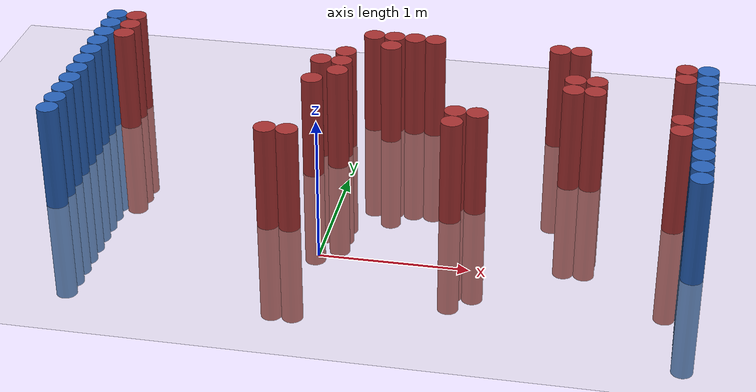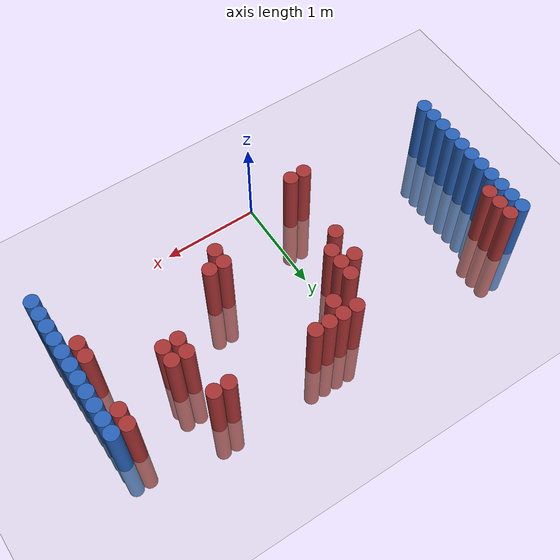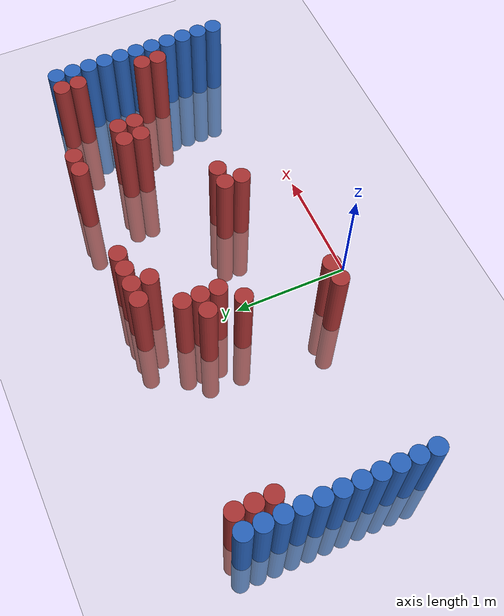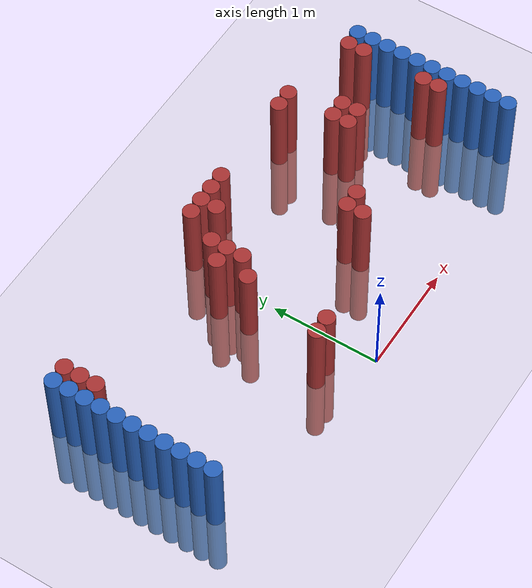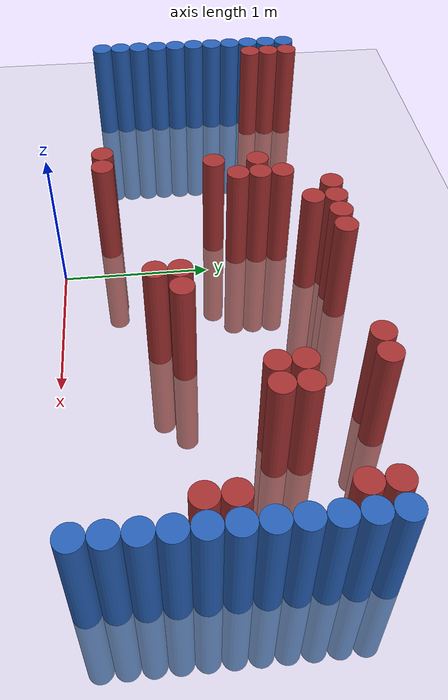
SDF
<sdf version="1.6">
 <world name="default">
  <model name="ground_plane">
   <static>1</static>
   <link name="link">
    <collision name="collision">
     <geometry><plane><normal>0 0 1</normal><size>100 100</size></plane></geometry>
     <surface><friction><ode><mu>100</mu><mu2>50</mu2></ode></friction></surface>
    </collision>
    <visual name="visual">
     <cast_shadows>0</cast_shadows>
     <geometry><plane><normal>0 0 1</normal><size>100 100</size></plane></geometry>
     <material>
      <script><uri>file://media/materials/scripts/gazebo.material</uri><name>Gazebo/Grey</name></script>
     </material>
    </visual>
   </link>
  </model>
  <model name="unit_cylinder_97">
   <static>1</static>
   <pose>-1.925000 0.325000 0.000000 0.000000 0.000000 0.000000</pose>
   <link name="link">
    <inertial>
     <mass>1</mass>
     <inertia><ixx>0.145833</ixx><ixy>0</ixy><ixz>0</ixz><iyy>0.145833</iyy><iyz>0</iyz><izz>0.125</izz></inertia>
    </inertial>
    <collision name="collision">
     <geometry><cylinder><radius>0.075000</radius><length>1.5</length></cylinder></geometry>
    </collision>
    <visual name="visual">
     <geometry><cylinder><radius>0.075000</radius><length>1.5</length></cylinder></geometry>
     <material>
      <ambient>0.152000 0.379000 0.720000 1</ambient>
      <diffuse>0.152000 0.379000 0.720000 1</diffuse>
     </material>
     <material>
      <script><name>Gazebo/Grey</name><uri>file://media/materials/scripts/gazebo.material</uri></script>
     </material>
    </visual>
   </link>
  </model>
  <model name="unit_cylinder_98">
   <static>1</static>
   <pose>-1.925000 0.475000 0.000000 0.000000 0.000000 0.000000</pose>
   <link name="link">
    <inertial>
     <mass>1</mass>
     <inertia><ixx>0.145833</ixx><ixy>0</ixy><ixz>0</ixz><iyy>0.145833</iyy><iyz>0</iyz><izz>0.125</izz></inertia>
    </inertial>
    <collision name="collision">
     <geometry><cylinder><radius>0.075000</radius><length>1.5</length></cylinder></geometry>
    </collision>
    <visual name="visual">
     <geometry><cylinder><radius>0.075000</radius><length>1.5</length></cylinder></geometry>
     <material>
      <ambient>0.152000 0.379000 0.720000 1</ambient>
      <diffuse>0.152000 0.379000 0.720000 1</diffuse>
     </material>
     <material>
      <script><name>Gazebo/Grey</name><uri>file://media/materials/scripts/gazebo.material</uri></script>
     </material>
    </visual>
   </link>
  </model>
  <model name="unit_cylinder_99">
   <static>1</static>
   <pose>-1.925000 0.625000 0.000000 0.000000 0.000000 0.000000</pose>
   <link name="link">
    <inertial>
     <mass>1</mass>
     <inertia><ixx>0.145833</ixx><ixy>0</ixy><ixz>0</ixz><iyy>0.145833</iyy><iyz>0</iyz><izz>0.125</izz></inertia>
    </inertial>
    <collision name="collision">
     <geometry><cylinder><radius>0.075000</radius><length>1.5</length></cylinder></geometry>
    </collision>
    <visual name="visual">
     <geometry><cylinder><radius>0.075000</radius><length>1.5</length></cylinder></geometry>
     <material>
      <ambient>0.152000 0.379000 0.720000 1</ambient>
      <diffuse>0.152000 0.379000 0.720000 1</diffuse>
     </material>
     <material>
      <script><name>Gazebo/Grey</name><uri>file://media/materials/scripts/gazebo.material</uri></script>
     </material>
    </visual>
   </link>
  </model>
  <model name="unit_cylinder_100">
   <static>1</static>
   <pose>-1.925000 0.775000 0.000000 0.000000 0.000000 0.000000</pose>
   <link name="link">
    <inertial>
     <mass>1</mass>
     <inertia><ixx>0.145833</ixx><ixy>0</ixy><ixz>0</ixz><iyy>0.145833</iyy><iyz>0</iyz><izz>0.125</izz></inertia>
    </inertial>
    <collision name="collision">
     <geometry><cylinder><radius>0.075000</radius><length>1.5</length></cylinder></geometry>
    </collision>
    <visual name="visual">
     <geometry><cylinder><radius>0.075000</radius><length>1.5</length></cylinder></geometry>
     <material>
      <ambient>0.152000 0.379000 0.720000 1</ambient>
      <diffuse>0.152000 0.379000 0.720000 1</diffuse>
     </material>
     <material>
      <script><name>Gazebo/Grey</name><uri>file://media/materials/scripts/gazebo.material</uri></script>
     </material>
    </visual>
   </link>
  </model>
  <model name="unit_cylinder_101">
   <static>1</static>
   <pose>-1.925000 0.925000 0.000000 0.000000 0.000000 0.000000</pose>
   <link name="link">
    <inertial>
     <mass>1</mass>
     <inertia><ixx>0.145833</ixx><ixy>0</ixy><ixz>0</ixz><iyy>0.145833</iyy><iyz>0</iyz><izz>0.125</izz></inertia>
    </inertial>
    <collision name="collision">
     <geometry><cylinder><radius>0.075000</radius><length>1.5</length></cylinder></geometry>
    </collision>
    <visual name="visual">
     <geometry><cylinder><radius>0.075000</radius><length>1.5</length></cylinder></geometry>
     <material>
      <ambient>0.152000 0.379000 0.720000 1</ambient>
      <diffuse>0.152000 0.379000 0.720000 1</diffuse>
     </material>
     <material>
      <script><name>Gazebo/Grey</name><uri>file://media/materials/scripts/gazebo.material</uri></script>
     </material>
    </visual>
   </link>
  </model>
  <model name="unit_cylinder_102">
   <static>1</static>
   <pose>-1.925000 1.075000 0.000000 0.000000 0.000000 0.000000</pose>
   <link name="link">
    <inertial>
     <mass>1</mass>
     <inertia><ixx>0.145833</ixx><ixy>0</ixy><ixz>0</ixz><iyy>0.145833</iyy><iyz>0</iyz><izz>0.125</izz></inertia>
    </inertial>
    <collision name="collision">
     <geometry><cylinder><radius>0.075000</radius><length>1.5</length></cylinder></geometry>
    </collision>
    <visual name="visual">
     <geometry><cylinder><radius>0.075000</radius><length>1.5</length></cylinder></geometry>
     <material>
      <ambient>0.152000 0.379000 0.720000 1</ambient>
      <diffuse>0.152000 0.379000 0.720000 1</diffuse>
     </material>
     <material>
      <script><name>Gazebo/Grey</name><uri>file://media/materials/scripts/gazebo.material</uri></script>
     </material>
    </visual>
   </link>
  </model>
  <model name="unit_cylinder_103">
   <static>1</static>
   <pose>-1.925000 1.225000 0.000000 0.000000 0.000000 0.000000</pose>
   <link name="link">
    <inertial>
     <mass>1</mass>
     <inertia><ixx>0.145833</ixx><ixy>0</ixy><ixz>0</ixz><iyy>0.145833</iyy><iyz>0</iyz><izz>0.125</izz></inertia>
    </inertial>
    <collision name="collision">
     <geometry><cylinder><radius>0.075000</radius><length>1.5</length></cylinder></geometry>
    </collision>
    <visual name="visual">
     <geometry><cylinder><radius>0.075000</radius><length>1.5</length></cylinder></geometry>
     <material>
      <ambient>0.152000 0.379000 0.720000 1</ambient>
      <diffuse>0.152000 0.379000 0.720000 1</diffuse>
     </material>
     <material>
      <script><name>Gazebo/Grey</name><uri>file://media/materials/scripts/gazebo.material</uri></script>
     </material>
    </visual>
   </link>
  </model>
  <model name="unit_cylinder_104">
   <static>1</static>
   <pose>-1.925000 1.375000 0.000000 0.000000 0.000000 0.000000</pose>
   <link name="link">
    <inertial>
     <mass>1</mass>
     <inertia><ixx>0.145833</ixx><ixy>0</ixy><ixz>0</ixz><iyy>0.145833</iyy><iyz>0</iyz><izz>0.125</izz></inertia>
    </inertial>
    <collision name="collision">
     <geometry><cylinder><radius>0.075000</radius><length>1.5</length></cylinder></geometry>
    </collision>
    <visual name="visual">
     <geometry><cylinder><radius>0.075000</radius><length>1.5</length></cylinder></geometry>
     <material>
      <ambient>0.152000 0.379000 0.720000 1</ambient>
      <diffuse>0.152000 0.379000 0.720000 1</diffuse>
     </material>
     <material>
      <script><name>Gazebo/Grey</name><uri>file://media/materials/scripts/gazebo.material</uri></script>
     </material>
    </visual>
   </link>
  </model>
  <model name="unit_cylinder_105">
   <static>1</static>
   <pose>-1.925000 1.525000 0.000000 0.000000 0.000000 0.000000</pose>
   <link name="link">
    <inertial>
     <mass>1</mass>
     <inertia><ixx>0.145833</ixx><ixy>0</ixy><ixz>0</ixz><iyy>0.145833</iyy><iyz>0</iyz><izz>0.125</izz></inertia>
    </inertial>
    <collision name="collision">
     <geometry><cylinder><radius>0.075000</radius><length>1.5</length></cylinder></geometry>
    </collision>
    <visual name="visual">
     <geometry><cylinder><radius>0.075000</radius><length>1.5</length></cylinder></geometry>
     <material>
      <ambient>0.152000 0.379000 0.720000 1</ambient>
      <diffuse>0.152000 0.379000 0.720000 1</diffuse>
     </material>
     <material>
      <script><name>Gazebo/Grey</name><uri>file://media/materials/scripts/gazebo.material</uri></script>
     </material>
    </visual>
   </link>
  </model>
  <model name="unit_cylinder_106">
   <static>1</static>
   <pose>-1.925000 1.675000 0.000000 0.000000 0.000000 0.000000</pose>
   <link name="link">
    <inertial>
     <mass>1</mass>
     <inertia><ixx>0.145833</ixx><ixy>0</ixy><ixz>0</ixz><iyy>0.145833</iyy><iyz>0</iyz><izz>0.125</izz></inertia>
    </inertial>
    <collision name="collision">
     <geometry><cylinder><radius>0.075000</radius><length>1.5</length></cylinder></geometry>
    </collision>
    <visual name="visual">
     <geometry><cylinder><radius>0.075000</radius><length>1.5</length></cylinder></geometry>
     <material>
      <ambient>0.152000 0.379000 0.720000 1</ambient>
      <diffuse>0.152000 0.379000 0.720000 1</diffuse>
     </material>
     <material>
      <script><name>Gazebo/Grey</name><uri>file://media/materials/scripts/gazebo.material</uri></script>
     </material>
    </visual>
   </link>
  </model>
  <model name="unit_cylinder_107">
   <static>1</static>
   <pose>-1.925000 1.825000 0.000000 0.000000 0.000000 0.000000</pose>
   <link name="link">
    <inertial>
     <mass>1</mass>
     <inertia><ixx>0.145833</ixx><ixy>0</ixy><ixz>0</ixz><iyy>0.145833</iyy><iyz>0</iyz><izz>0.125</izz></inertia>
    </inertial>
    <collision name="collision">
     <geometry><cylinder><radius>0.075000</radius><length>1.5</length></cylinder></geometry>
    </collision>
    <visual name="visual">
     <geometry><cylinder><radius>0.075000</radius><length>1.5</length></cylinder></geometry>
     <material>
      <ambient>0.152000 0.379000 0.720000 1</ambient>
      <diffuse>0.152000 0.379000 0.720000 1</diffuse>
     </material>
     <material>
      <script><name>Gazebo/Grey</name><uri>file://media/materials/scripts/gazebo.material</uri></script>
     </material>
    </visual>
   </link>
  </model>
  <model name="unit_cylinder_126">
   <static>1</static>
   <pose>-1.775000 1.525000 0.000000 0.000000 0.000000 0.000000</pose>
   <link name="link">
    <inertial>
     <mass>1</mass>
     <inertia><ixx>0.145833</ixx><ixy>0</ixy><ixz>0</ixz><iyy>0.145833</iyy><iyz>0</iyz><izz>0.125</izz></inertia>
    </inertial>
    <collision name="collision">
     <geometry><cylinder><radius>0.075000</radius><length>1.5</length></cylinder></geometry>
    </collision>
    <visual name="visual">
     <geometry><cylinder><radius>0.075000</radius><length>1.5</length></cylinder></geometry>
     <material>
      <ambient>0.648000 0.192000 0.192000 1</ambient>
      <diffuse>0.648000 0.192000 0.192000 1</diffuse>
     </material>
     <material>
      <script><name>Gazebo/Grey</name><uri>file://media/materials/scripts/gazebo.material</uri></script>
     </material>
    </visual>
   </link>
  </model>
  <model name="unit_cylinder_127">
   <static>1</static>
   <pose>-1.775000 1.675000 0.000000 0.000000 0.000000 0.000000</pose>
   <link name="link">
    <inertial>
     <mass>1</mass>
     <inertia><ixx>0.145833</ixx><ixy>0</ixy><ixz>0</ixz><iyy>0.145833</iyy><iyz>0</iyz><izz>0.125</izz></inertia>
    </inertial>
    <collision name="collision">
     <geometry><cylinder><radius>0.075000</radius><length>1.5</length></cylinder></geometry>
    </collision>
    <visual name="visual">
     <geometry><cylinder><radius>0.075000</radius><length>1.5</length></cylinder></geometry>
     <material>
      <ambient>0.648000 0.192000 0.192000 1</ambient>
      <diffuse>0.648000 0.192000 0.192000 1</diffuse>
     </material>
     <material>
      <script><name>Gazebo/Grey</name><uri>file://media/materials/scripts/gazebo.material</uri></script>
     </material>
    </visual>
   </link>
  </model>
  <model name="unit_cylinder_128">
   <static>1</static>
   <pose>-1.775000 1.825000 0.000000 0.000000 0.000000 0.000000</pose>
   <link name="link">
    <inertial>
     <mass>1</mass>
     <inertia><ixx>0.145833</ixx><ixy>0</ixy><ixz>0</ixz><iyy>0.145833</iyy><iyz>0</iyz><izz>0.125</izz></inertia>
    </inertial>
    <collision name="collision">
     <geometry><cylinder><radius>0.075000</radius><length>1.5</length></cylinder></geometry>
    </collision>
    <visual name="visual">
     <geometry><cylinder><radius>0.075000</radius><length>1.5</length></cylinder></geometry>
     <material>
      <ambient>0.648000 0.192000 0.192000 1</ambient>
      <diffuse>0.648000 0.192000 0.192000 1</diffuse>
     </material>
     <material>
      <script><name>Gazebo/Grey</name><uri>file://media/materials/scripts/gazebo.material</uri></script>
     </material>
    </visual>
   </link>
  </model>
  <model name="unit_cylinder_167">
   <static>1</static>
   <pose>-0.425000 0.325000 0.000000 0.000000 0.000000 0.000000</pose>
   <link name="link">
    <inertial>
     <mass>1</mass>
     <inertia><ixx>0.145833</ixx><ixy>0</ixy><ixz>0</ixz><iyy>0.145833</iyy><iyz>0</iyz><izz>0.125</izz></inertia>
    </inertial>
    <collision name="collision">
     <geometry><cylinder><radius>0.075000</radius><length>1.5</length></cylinder></geometry>
    </collision>
    <visual name="visual">
     <geometry><cylinder><radius>0.075000</radius><length>1.5</length></cylinder></geometry>
     <material>
      <ambient>0.648000 0.192000 0.192000 1</ambient>
      <diffuse>0.648000 0.192000 0.192000 1</diffuse>
     </material>
     <material>
      <script><name>Gazebo/Grey</name><uri>file://media/materials/scripts/gazebo.material</uri></script>
     </material>
    </visual>
   </link>
  </model>
  <model name="unit_cylinder_169">
   <static>1</static>
   <pose>-0.275000 0.325000 0.000000 0.000000 0.000000 0.000000</pose>
   <link name="link">
    <inertial>
     <mass>1</mass>
     <inertia><ixx>0.145833</ixx><ixy>0</ixy><ixz>0</ixz><iyy>0.145833</iyy><iyz>0</iyz><izz>0.125</izz></inertia>
    </inertial>
    <collision name="collision">
     <geometry><cylinder><radius>0.075000</radius><length>1.5</length></cylinder></geometry>
    </collision>
    <visual name="visual">
     <geometry><cylinder><radius>0.075000</radius><length>1.5</length></cylinder></geometry>
     <material>
      <ambient>0.648000 0.192000 0.192000 1</ambient>
      <diffuse>0.648000 0.192000 0.192000 1</diffuse>
     </material>
     <material>
      <script><name>Gazebo/Grey</name><uri>file://media/materials/scripts/gazebo.material</uri></script>
     </material>
    </visual>
   </link>
  </model>
  <model name="unit_cylinder_170">
   <static>1</static>
   <pose>-0.275000 1.075000 0.000000 0.000000 0.000000 0.000000</pose>
   <link name="link">
    <inertial>
     <mass>1</mass>
     <inertia><ixx>0.145833</ixx><ixy>0</ixy><ixz>0</ixz><iyy>0.145833</iyy><iyz>0</iyz><izz>0.125</izz></inertia>
    </inertial>
    <collision name="collision">
     <geometry><cylinder><radius>0.075000</radius><length>1.5</length></cylinder></geometry>
    </collision>
    <visual name="visual">
     <geometry><cylinder><radius>0.075000</radius><length>1.5</length></cylinder></geometry>
     <material>
      <ambient>0.648000 0.192000 0.192000 1</ambient>
      <diffuse>0.648000 0.192000 0.192000 1</diffuse>
     </material>
     <material>
      <script><name>Gazebo/Grey</name><uri>file://media/materials/scripts/gazebo.material</uri></script>
     </material>
    </visual>
   </link>
  </model>
  <model name="unit_cylinder_171">
   <static>1</static>
   <pose>-0.275000 1.375000 0.000000 0.000000 0.000000 0.000000</pose>
   <link name="link">
    <inertial>
     <mass>1</mass>
     <inertia><ixx>0.145833</ixx><ixy>0</ixy><ixz>0</ixz><iyy>0.145833</iyy><iyz>0</iyz><izz>0.125</izz></inertia>
    </inertial>
    <collision name="collision">
     <geometry><cylinder><radius>0.075000</radius><length>1.5</length></cylinder></geometry>
    </collision>
    <visual name="visual">
     <geometry><cylinder><radius>0.075000</radius><length>1.5</length></cylinder></geometry>
     <material>
      <ambient>0.648000 0.192000 0.192000 1</ambient>
      <diffuse>0.648000 0.192000 0.192000 1</diffuse>
     </material>
     <material>
      <script><name>Gazebo/Grey</name><uri>file://media/materials/scripts/gazebo.material</uri></script>
     </material>
    </visual>
   </link>
  </model>
  <model name="unit_cylinder_172">
   <static>1</static>
   <pose>-0.125000 1.225000 0.000000 0.000000 0.000000 0.000000</pose>
   <link name="link">
    <inertial>
     <mass>1</mass>
     <inertia><ixx>0.145833</ixx><ixy>0</ixy><ixz>0</ixz><iyy>0.145833</iyy><iyz>0</iyz><izz>0.125</izz></inertia>
    </inertial>
    <collision name="collision">
     <geometry><cylinder><radius>0.075000</radius><length>1.5</length></cylinder></geometry>
    </collision>
    <visual name="visual">
     <geometry><cylinder><radius>0.075000</radius><length>1.5</length></cylinder></geometry>
     <material>
      <ambient>0.648000 0.192000 0.192000 1</ambient>
      <diffuse>0.648000 0.192000 0.192000 1</diffuse>
     </material>
     <material>
      <script><name>Gazebo/Grey</name><uri>file://media/materials/scripts/gazebo.material</uri></script>
     </material>
    </visual>
   </link>
  </model>
  <model name="unit_cylinder_173">
   <static>1</static>
   <pose>-0.125000 1.375000 0.000000 0.000000 0.000000 0.000000</pose>
   <link name="link">
    <inertial>
     <mass>1</mass>
     <inertia><ixx>0.145833</ixx><ixy>0</ixy><ixz>0</ixz><iyy>0.145833</iyy><iyz>0</iyz><izz>0.125</izz></inertia>
    </inertial>
    <collision name="collision">
     <geometry><cylinder><radius>0.075000</radius><length>1.5</length></cylinder></geometry>
    </collision>
    <visual name="visual">
     <geometry><cylinder><radius>0.075000</radius><length>1.5</length></cylinder></geometry>
     <material>
      <ambient>0.648000 0.192000 0.192000 1</ambient>
      <diffuse>0.648000 0.192000 0.192000 1</diffuse>
     </material>
     <material>
      <script><name>Gazebo/Grey</name><uri>file://media/materials/scripts/gazebo.material</uri></script>
     </material>
    </visual>
   </link>
  </model>
  <model name="unit_cylinder_174">
   <static>1</static>
   <pose>-0.125000 1.525000 0.000000 0.000000 0.000000 0.000000</pose>
   <link name="link">
    <inertial>
     <mass>1</mass>
     <inertia><ixx>0.145833</ixx><ixy>0</ixy><ixz>0</ixz><iyy>0.145833</iyy><iyz>0</iyz><izz>0.125</izz></inertia>
    </inertial>
    <collision name="collision">
     <geometry><cylinder><radius>0.075000</radius><length>1.5</length></cylinder></geometry>
    </collision>
    <visual name="visual">
     <geometry><cylinder><radius>0.075000</radius><length>1.5</length></cylinder></geometry>
     <material>
      <ambient>0.648000 0.192000 0.192000 1</ambient>
      <diffuse>0.648000 0.192000 0.192000 1</diffuse>
     </material>
     <material>
      <script><name>Gazebo/Grey</name><uri>file://media/materials/scripts/gazebo.material</uri></script>
     </material>
    </visual>
   </link>
  </model>
  <model name="unit_cylinder_175">
   <static>1</static>
   <pose>0.025000 1.825000 0.000000 0.000000 0.000000 0.000000</pose>
   <link name="link">
    <inertial>
     <mass>1</mass>
     <inertia><ixx>0.145833</ixx><ixy>0</ixy><ixz>0</ixz><iyy>0.145833</iyy><iyz>0</iyz><izz>0.125</izz></inertia>
    </inertial>
    <collision name="collision">
     <geometry><cylinder><radius>0.075000</radius><length>1.5</length></cylinder></geometry>
    </collision>
    <visual name="visual">
     <geometry><cylinder><radius>0.075000</radius><length>1.5</length></cylinder></geometry>
     <material>
      <ambient>0.648000 0.192000 0.192000 1</ambient>
      <diffuse>0.648000 0.192000 0.192000 1</diffuse>
     </material>
     <material>
      <script><name>Gazebo/Grey</name><uri>file://media/materials/scripts/gazebo.material</uri></script>
     </material>
    </visual>
   </link>
  </model>
  <model name="unit_cylinder_177">
   <static>1</static>
   <pose>0.175000 1.675000 0.000000 0.000000 0.000000 0.000000</pose>
   <link name="link">
    <inertial>
     <mass>1</mass>
     <inertia><ixx>0.145833</ixx><ixy>0</ixy><ixz>0</ixz><iyy>0.145833</iyy><iyz>0</iyz><izz>0.125</izz></inertia>
    </inertial>
    <collision name="collision">
     <geometry><cylinder><radius>0.075000</radius><length>1.5</length></cylinder></geometry>
    </collision>
    <visual name="visual">
     <geometry><cylinder><radius>0.075000</radius><length>1.5</length></cylinder></geometry>
     <material>
      <ambient>0.648000 0.192000 0.192000 1</ambient>
      <diffuse>0.648000 0.192000 0.192000 1</diffuse>
     </material>
     <material>
      <script><name>Gazebo/Grey</name><uri>file://media/materials/scripts/gazebo.material</uri></script>
     </material>
    </visual>
   </link>
  </model>
  <model name="unit_cylinder_178">
   <static>1</static>
   <pose>0.175000 1.825000 0.000000 0.000000 0.000000 0.000000</pose>
   <link name="link">
    <inertial>
     <mass>1</mass>
     <inertia><ixx>0.145833</ixx><ixy>0</ixy><ixz>0</ixz><iyy>0.145833</iyy><iyz>0</iyz><izz>0.125</izz></inertia>
    </inertial>
    <collision name="collision">
     <geometry><cylinder><radius>0.075000</radius><length>1.5</length></cylinder></geometry>
    </collision>
    <visual name="visual">
     <geometry><cylinder><radius>0.075000</radius><length>1.5</length></cylinder></geometry>
     <material>
      <ambient>0.648000 0.192000 0.192000 1</ambient>
      <diffuse>0.648000 0.192000 0.192000 1</diffuse>
     </material>
     <material>
      <script><name>Gazebo/Grey</name><uri>file://media/materials/scripts/gazebo.material</uri></script>
     </material>
    </visual>
   </link>
  </model>
  <model name="unit_cylinder_180">
   <static>1</static>
   <pose>0.325000 1.825000 0.000000 0.000000 0.000000 0.000000</pose>
   <link name="link">
    <inertial>
     <mass>1</mass>
     <inertia><ixx>0.145833</ixx><ixy>0</ixy><ixz>0</ixz><iyy>0.145833</iyy><iyz>0</iyz><izz>0.125</izz></inertia>
    </inertial>
    <collision name="collision">
     <geometry><cylinder><radius>0.075000</radius><length>1.5</length></cylinder></geometry>
    </collision>
    <visual name="visual">
     <geometry><cylinder><radius>0.075000</radius><length>1.5</length></cylinder></geometry>
     <material>
      <ambient>0.648000 0.192000 0.192000 1</ambient>
      <diffuse>0.648000 0.192000 0.192000 1</diffuse>
     </material>
     <material>
      <script><name>Gazebo/Grey</name><uri>file://media/materials/scripts/gazebo.material</uri></script>
     </material>
    </visual>
   </link>
  </model>
  <model name="unit_cylinder_182">
   <static>1</static>
   <pose>0.475000 1.825000 0.000000 0.000000 0.000000 0.000000</pose>
   <link name="link">
    <inertial>
     <mass>1</mass>
     <inertia><ixx>0.145833</ixx><ixy>0</ixy><ixz>0</ixz><iyy>0.145833</iyy><iyz>0</iyz><izz>0.125</izz></inertia>
    </inertial>
    <collision name="collision">
     <geometry><cylinder><radius>0.075000</radius><length>1.5</length></cylinder></geometry>
    </collision>
    <visual name="visual">
     <geometry><cylinder><radius>0.075000</radius><length>1.5</length></cylinder></geometry>
     <material>
      <ambient>0.648000 0.192000 0.192000 1</ambient>
      <diffuse>0.648000 0.192000 0.192000 1</diffuse>
     </material>
     <material>
      <script><name>Gazebo/Grey</name><uri>file://media/materials/scripts/gazebo.material</uri></script>
     </material>
    </visual>
   </link>
  </model>
  <model name="unit_cylinder_186">
   <static>1</static>
   <pose>0.775000 0.625000 0.000000 0.000000 0.000000 0.000000</pose>
   <link name="link">
    <inertial>
     <mass>1</mass>
     <inertia><ixx>0.145833</ixx><ixy>0</ixy><ixz>0</ixz><iyy>0.145833</iyy><iyz>0</iyz><izz>0.125</izz></inertia>
    </inertial>
    <collision name="collision">
     <geometry><cylinder><radius>0.075000</radius><length>1.5</length></cylinder></geometry>
    </collision>
    <visual name="visual">
     <geometry><cylinder><radius>0.075000</radius><length>1.5</length></cylinder></geometry>
     <material>
      <ambient>0.648000 0.192000 0.192000 1</ambient>
      <diffuse>0.648000 0.192000 0.192000 1</diffuse>
     </material>
     <material>
      <script><name>Gazebo/Grey</name><uri>file://media/materials/scripts/gazebo.material</uri></script>
     </material>
    </visual>
   </link>
  </model>
  <model name="unit_cylinder_187">
   <static>1</static>
   <pose>0.775000 0.775000 0.000000 0.000000 0.000000 0.000000</pose>
   <link name="link">
    <inertial>
     <mass>1</mass>
     <inertia><ixx>0.145833</ixx><ixy>0</ixy><ixz>0</ixz><iyy>0.145833</iyy><iyz>0</iyz><izz>0.125</izz></inertia>
    </inertial>
    <collision name="collision">
     <geometry><cylinder><radius>0.075000</radius><length>1.5</length></cylinder></geometry>
    </collision>
    <visual name="visual">
     <geometry><cylinder><radius>0.075000</radius><length>1.5</length></cylinder></geometry>
     <material>
      <ambient>0.648000 0.192000 0.192000 1</ambient>
      <diffuse>0.648000 0.192000 0.192000 1</diffuse>
     </material>
     <material>
      <script><name>Gazebo/Grey</name><uri>file://media/materials/scripts/gazebo.material</uri></script>
     </material>
    </visual>
   </link>
  </model>
  <model name="unit_cylinder_193">
   <static>1</static>
   <pose>0.925000 0.775000 0.000000 0.000000 0.000000 0.000000</pose>
   <link name="link">
    <inertial>
     <mass>1</mass>
     <inertia><ixx>0.145833</ixx><ixy>0</ixy><ixz>0</ixz><iyy>0.145833</iyy><iyz>0</iyz><izz>0.125</izz></inertia>
    </inertial>
    <collision name="collision">
     <geometry><cylinder><radius>0.075000</radius><length>1.5</length></cylinder></geometry>
    </collision>
    <visual name="visual">
     <geometry><cylinder><radius>0.075000</radius><length>1.5</length></cylinder></geometry>
     <material>
      <ambient>0.648000 0.192000 0.192000 1</ambient>
      <diffuse>0.648000 0.192000 0.192000 1</diffuse>
     </material>
     <material>
      <script><name>Gazebo/Grey</name><uri>file://media/materials/scripts/gazebo.material</uri></script>
     </material>
    </visual>
   </link>
  </model>
  <model name="unit_cylinder_207">
   <static>1</static>
   <pose>1.375000 1.825000 0.000000 0.000000 0.000000 0.000000</pose>
   <link name="link">
    <inertial>
     <mass>1</mass>
     <inertia><ixx>0.145833</ixx><ixy>0</ixy><ixz>0</ixz><iyy>0.145833</iyy><iyz>0</iyz><izz>0.125</izz></inertia>
    </inertial>
    <collision name="collision">
     <geometry><cylinder><radius>0.075000</radius><length>1.5</length></cylinder></geometry>
    </collision>
    <visual name="visual">
     <geometry><cylinder><radius>0.075000</radius><length>1.5</length></cylinder></geometry>
     <material>
      <ambient>0.648000 0.192000 0.192000 1</ambient>
      <diffuse>0.648000 0.192000 0.192000 1</diffuse>
     </material>
     <material>
      <script><name>Gazebo/Grey</name><uri>file://media/materials/scripts/gazebo.material</uri></script>
     </material>
    </visual>
   </link>
  </model>
  <model name="unit_cylinder_216">
   <static>1</static>
   <pose>1.525000 1.225000 0.000000 0.000000 0.000000 0.000000</pose>
   <link name="link">
    <inertial>
     <mass>1</mass>
     <inertia><ixx>0.145833</ixx><ixy>0</ixy><ixz>0</ixz><iyy>0.145833</iyy><iyz>0</iyz><izz>0.125</izz></inertia>
    </inertial>
    <collision name="collision">
     <geometry><cylinder><radius>0.075000</radius><length>1.5</length></cylinder></geometry>
    </collision>
    <visual name="visual">
     <geometry><cylinder><radius>0.075000</radius><length>1.5</length></cylinder></geometry>
     <material>
      <ambient>0.648000 0.192000 0.192000 1</ambient>
      <diffuse>0.648000 0.192000 0.192000 1</diffuse>
     </material>
     <material>
      <script><name>Gazebo/Grey</name><uri>file://media/materials/scripts/gazebo.material</uri></script>
     </material>
    </visual>
   </link>
  </model>
  <model name="unit_cylinder_217">
   <static>1</static>
   <pose>1.525000 1.375000 0.000000 0.000000 0.000000 0.000000</pose>
   <link name="link">
    <inertial>
     <mass>1</mass>
     <inertia><ixx>0.145833</ixx><ixy>0</ixy><ixz>0</ixz><iyy>0.145833</iyy><iyz>0</iyz><izz>0.125</izz></inertia>
    </inertial>
    <collision name="collision">
     <geometry><cylinder><radius>0.075000</radius><length>1.5</length></cylinder></geometry>
    </collision>
    <visual name="visual">
     <geometry><cylinder><radius>0.075000</radius><length>1.5</length></cylinder></geometry>
     <material>
      <ambient>0.648000 0.192000 0.192000 1</ambient>
      <diffuse>0.648000 0.192000 0.192000 1</diffuse>
     </material>
     <material>
      <script><name>Gazebo/Grey</name><uri>file://media/materials/scripts/gazebo.material</uri></script>
     </material>
    </visual>
   </link>
  </model>
  <model name="unit_cylinder_218">
   <static>1</static>
   <pose>1.525000 1.825000 0.000000 0.000000 0.000000 0.000000</pose>
   <link name="link">
    <inertial>
     <mass>1</mass>
     <inertia><ixx>0.145833</ixx><ixy>0</ixy><ixz>0</ixz><iyy>0.145833</iyy><iyz>0</iyz><izz>0.125</izz></inertia>
    </inertial>
    <collision name="collision">
     <geometry><cylinder><radius>0.075000</radius><length>1.5</length></cylinder></geometry>
    </collision>
    <visual name="visual">
     <geometry><cylinder><radius>0.075000</radius><length>1.5</length></cylinder></geometry>
     <material>
      <ambient>0.648000 0.192000 0.192000 1</ambient>
      <diffuse>0.648000 0.192000 0.192000 1</diffuse>
     </material>
     <material>
      <script><name>Gazebo/Grey</name><uri>file://media/materials/scripts/gazebo.material</uri></script>
     </material>
    </visual>
   </link>
  </model>
  <model name="unit_cylinder_224">
   <static>1</static>
   <pose>1.675000 1.225000 0.000000 0.000000 0.000000 0.000000</pose>
   <link name="link">
    <inertial>
     <mass>1</mass>
     <inertia><ixx>0.145833</ixx><ixy>0</ixy><ixz>0</ixz><iyy>0.145833</iyy><iyz>0</iyz><izz>0.125</izz></inertia>
    </inertial>
    <collision name="collision">
     <geometry><cylinder><radius>0.075000</radius><length>1.5</length></cylinder></geometry>
    </collision>
    <visual name="visual">
     <geometry><cylinder><radius>0.075000</radius><length>1.5</length></cylinder></geometry>
     <material>
      <ambient>0.648000 0.192000 0.192000 1</ambient>
      <diffuse>0.648000 0.192000 0.192000 1</diffuse>
     </material>
     <material>
      <script><name>Gazebo/Grey</name><uri>file://media/materials/scripts/gazebo.material</uri></script>
     </material>
    </visual>
   </link>
  </model>
  <model name="unit_cylinder_225">
   <static>1</static>
   <pose>1.675000 1.375000 0.000000 0.000000 0.000000 0.000000</pose>
   <link name="link">
    <inertial>
     <mass>1</mass>
     <inertia><ixx>0.145833</ixx><ixy>0</ixy><ixz>0</ixz><iyy>0.145833</iyy><iyz>0</iyz><izz>0.125</izz></inertia>
    </inertial>
    <collision name="collision">
     <geometry><cylinder><radius>0.075000</radius><length>1.5</length></cylinder></geometry>
    </collision>
    <visual name="visual">
     <geometry><cylinder><radius>0.075000</radius><length>1.5</length></cylinder></geometry>
     <material>
      <ambient>0.648000 0.192000 0.192000 1</ambient>
      <diffuse>0.648000 0.192000 0.192000 1</diffuse>
     </material>
     <material>
      <script><name>Gazebo/Grey</name><uri>file://media/materials/scripts/gazebo.material</uri></script>
     </material>
    </visual>
   </link>
  </model>
  <model name="unit_cylinder_254">
   <static>1</static>
   <pose>2.275000 0.775000 0.000000 0.000000 0.000000 0.000000</pose>
   <link name="link">
    <inertial>
     <mass>1</mass>
     <inertia><ixx>0.145833</ixx><ixy>0</ixy><ixz>0</ixz><iyy>0.145833</iyy><iyz>0</iyz><izz>0.125</izz></inertia>
    </inertial>
    <collision name="collision">
     <geometry><cylinder><radius>0.075000</radius><length>1.5</length></cylinder></geometry>
    </collision>
    <visual name="visual">
     <geometry><cylinder><radius>0.075000</radius><length>1.5</length></cylinder></geometry>
     <material>
      <ambient>0.648000 0.192000 0.192000 1</ambient>
      <diffuse>0.648000 0.192000 0.192000 1</diffuse>
     </material>
     <material>
      <script><name>Gazebo/Grey</name><uri>file://media/materials/scripts/gazebo.material</uri></script>
     </material>
    </visual>
   </link>
  </model>
  <model name="unit_cylinder_255">
   <static>1</static>
   <pose>2.275000 0.925000 0.000000 0.000000 0.000000 0.000000</pose>
   <link name="link">
    <inertial>
     <mass>1</mass>
     <inertia><ixx>0.145833</ixx><ixy>0</ixy><ixz>0</ixz><iyy>0.145833</iyy><iyz>0</iyz><izz>0.125</izz></inertia>
    </inertial>
    <collision name="collision">
     <geometry><cylinder><radius>0.075000</radius><length>1.5</length></cylinder></geometry>
    </collision>
    <visual name="visual">
     <geometry><cylinder><radius>0.075000</radius><length>1.5</length></cylinder></geometry>
     <material>
      <ambient>0.648000 0.192000 0.192000 1</ambient>
      <diffuse>0.648000 0.192000 0.192000 1</diffuse>
     </material>
     <material>
      <script><name>Gazebo/Grey</name><uri>file://media/materials/scripts/gazebo.material</uri></script>
     </material>
    </visual>
   </link>
  </model>
  <model name="unit_cylinder_256">
   <static>1</static>
   <pose>2.275000 1.525000 0.000000 0.000000 0.000000 0.000000</pose>
   <link name="link">
    <inertial>
     <mass>1</mass>
     <inertia><ixx>0.145833</ixx><ixy>0</ixy><ixz>0</ixz><iyy>0.145833</iyy><iyz>0</iyz><izz>0.125</izz></inertia>
    </inertial>
    <collision name="collision">
     <geometry><cylinder><radius>0.075000</radius><length>1.5</length></cylinder></geometry>
    </collision>
    <visual name="visual">
     <geometry><cylinder><radius>0.075000</radius><length>1.5</length></cylinder></geometry>
     <material>
      <ambient>0.648000 0.192000 0.192000 1</ambient>
      <diffuse>0.648000 0.192000 0.192000 1</diffuse>
     </material>
     <material>
      <script><name>Gazebo/Grey</name><uri>file://media/materials/scripts/gazebo.material</uri></script>
     </material>
    </visual>
   </link>
  </model>
  <model name="unit_cylinder_257">
   <static>1</static>
   <pose>2.275000 1.675000 0.000000 0.000000 0.000000 0.000000</pose>
   <link name="link">
    <inertial>
     <mass>1</mass>
     <inertia><ixx>0.145833</ixx><ixy>0</ixy><ixz>0</ixz><iyy>0.145833</iyy><iyz>0</iyz><izz>0.125</izz></inertia>
    </inertial>
    <collision name="collision">
     <geometry><cylinder><radius>0.075000</radius><length>1.5</length></cylinder></geometry>
    </collision>
    <visual name="visual">
     <geometry><cylinder><radius>0.075000</radius><length>1.5</length></cylinder></geometry>
     <material>
      <ambient>0.648000 0.192000 0.192000 1</ambient>
      <diffuse>0.648000 0.192000 0.192000 1</diffuse>
     </material>
     <material>
      <script><name>Gazebo/Grey</name><uri>file://media/materials/scripts/gazebo.material</uri></script>
     </material>
    </visual>
   </link>
  </model>
  <model name="unit_cylinder_269">
   <static>1</static>
   <pose>2.425000 0.175000 0.000000 0.000000 0.000000 0.000000</pose>
   <link name="link">
    <inertial>
     <mass>1</mass>
     <inertia><ixx>0.145833</ixx><ixy>0</ixy><ixz>0</ixz><iyy>0.145833</iyy><iyz>0</iyz><izz>0.125</izz></inertia>
    </inertial>
    <collision name="collision">
     <geometry><cylinder><radius>0.075000</radius><length>1.5</length></cylinder></geometry>
    </collision>
    <visual name="visual">
     <geometry><cylinder><radius>0.075000</radius><length>1.5</length></cylinder></geometry>
     <material>
      <ambient>0.152000 0.379000 0.720000 1</ambient>
      <diffuse>0.152000 0.379000 0.720000 1</diffuse>
     </material>
     <material>
      <script><name>Gazebo/Grey</name><uri>file://media/materials/scripts/gazebo.material</uri></script>
     </material>
    </visual>
   </link>
  </model>
  <model name="unit_cylinder_270">
   <static>1</static>
   <pose>2.425000 0.325000 0.000000 0.000000 0.000000 0.000000</pose>
   <link name="link">
    <inertial>
     <mass>1</mass>
     <inertia><ixx>0.145833</ixx><ixy>0</ixy><ixz>0</ixz><iyy>0.145833</iyy><iyz>0</iyz><izz>0.125</izz></inertia>
    </inertial>
    <collision name="collision">
     <geometry><cylinder><radius>0.075000</radius><length>1.5</length></cylinder></geometry>
    </collision>
    <visual name="visual">
     <geometry><cylinder><radius>0.075000</radius><length>1.5</length></cylinder></geometry>
     <material>
      <ambient>0.152000 0.379000 0.720000 1</ambient>
      <diffuse>0.152000 0.379000 0.720000 1</diffuse>
     </material>
     <material>
      <script><name>Gazebo/Grey</name><uri>file://media/materials/scripts/gazebo.material</uri></script>
     </material>
    </visual>
   </link>
  </model>
  <model name="unit_cylinder_271">
   <static>1</static>
   <pose>2.425000 0.475000 0.000000 0.000000 0.000000 0.000000</pose>
   <link name="link">
    <inertial>
     <mass>1</mass>
     <inertia><ixx>0.145833</ixx><ixy>0</ixy><ixz>0</ixz><iyy>0.145833</iyy><iyz>0</iyz><izz>0.125</izz></inertia>
    </inertial>
    <collision name="collision">
     <geometry><cylinder><radius>0.075000</radius><length>1.5</length></cylinder></geometry>
    </collision>
    <visual name="visual">
     <geometry><cylinder><radius>0.075000</radius><length>1.5</length></cylinder></geometry>
     <material>
      <ambient>0.152000 0.379000 0.720000 1</ambient>
      <diffuse>0.152000 0.379000 0.720000 1</diffuse>
     </material>
     <material>
      <script><name>Gazebo/Grey</name><uri>file://media/materials/scripts/gazebo.material</uri></script>
     </material>
    </visual>
   </link>
  </model>
  <model name="unit_cylinder_272">
   <static>1</static>
   <pose>2.425000 0.625000 0.000000 0.000000 0.000000 0.000000</pose>
   <link name="link">
    <inertial>
     <mass>1</mass>
     <inertia><ixx>0.145833</ixx><ixy>0</ixy><ixz>0</ixz><iyy>0.145833</iyy><iyz>0</iyz><izz>0.125</izz></inertia>
    </inertial>
    <collision name="collision">
     <geometry><cylinder><radius>0.075000</radius><length>1.5</length></cylinder></geometry>
    </collision>
    <visual name="visual">
     <geometry><cylinder><radius>0.075000</radius><length>1.5</length></cylinder></geometry>
     <material>
      <ambient>0.152000 0.379000 0.720000 1</ambient>
      <diffuse>0.152000 0.379000 0.720000 1</diffuse>
     </material>
     <material>
      <script><name>Gazebo/Grey</name><uri>file://media/materials/scripts/gazebo.material</uri></script>
     </material>
    </visual>
   </link>
  </model>
  <model name="unit_cylinder_273">
   <static>1</static>
   <pose>2.425000 0.775000 0.000000 0.000000 0.000000 0.000000</pose>
   <link name="link">
    <inertial>
     <mass>1</mass>
     <inertia><ixx>0.145833</ixx><ixy>0</ixy><ixz>0</ixz><iyy>0.145833</iyy><iyz>0</iyz><izz>0.125</izz></inertia>
    </inertial>
    <collision name="collision">
     <geometry><cylinder><radius>0.075000</radius><length>1.5</length></cylinder></geometry>
    </collision>
    <visual name="visual">
     <geometry><cylinder><radius>0.075000</radius><length>1.5</length></cylinder></geometry>
     <material>
      <ambient>0.152000 0.379000 0.720000 1</ambient>
      <diffuse>0.152000 0.379000 0.720000 1</diffuse>
     </material>
     <material>
      <script><name>Gazebo/Grey</name><uri>file://media/materials/scripts/gazebo.material</uri></script>
     </material>
    </visual>
   </link>
  </model>
  <model name="unit_cylinder_274">
   <static>1</static>
   <pose>2.425000 0.925000 0.000000 0.000000 0.000000 0.000000</pose>
   <link name="link">
    <inertial>
     <mass>1</mass>
     <inertia><ixx>0.145833</ixx><ixy>0</ixy><ixz>0</ixz><iyy>0.145833</iyy><iyz>0</iyz><izz>0.125</izz></inertia>
    </inertial>
    <collision name="collision">
     <geometry><cylinder><radius>0.075000</radius><length>1.5</length></cylinder></geometry>
    </collision>
    <visual name="visual">
     <geometry><cylinder><radius>0.075000</radius><length>1.5</length></cylinder></geometry>
     <material>
      <ambient>0.152000 0.379000 0.720000 1</ambient>
      <diffuse>0.152000 0.379000 0.720000 1</diffuse>
     </material>
     <material>
      <script><name>Gazebo/Grey</name><uri>file://media/materials/scripts/gazebo.material</uri></script>
     </material>
    </visual>
   </link>
  </model>
  <model name="unit_cylinder_275">
   <static>1</static>
   <pose>2.425000 1.075000 0.000000 0.000000 0.000000 0.000000</pose>
   <link name="link">
    <inertial>
     <mass>1</mass>
     <inertia><ixx>0.145833</ixx><ixy>0</ixy><ixz>0</ixz><iyy>0.145833</iyy><iyz>0</iyz><izz>0.125</izz></inertia>
    </inertial>
    <collision name="collision">
     <geometry><cylinder><radius>0.075000</radius><length>1.5</length></cylinder></geometry>
    </collision>
    <visual name="visual">
     <geometry><cylinder><radius>0.075000</radius><length>1.5</length></cylinder></geometry>
     <material>
      <ambient>0.152000 0.379000 0.720000 1</ambient>
      <diffuse>0.152000 0.379000 0.720000 1</diffuse>
     </material>
     <material>
      <script><name>Gazebo/Grey</name><uri>file://media/materials/scripts/gazebo.material</uri></script>
     </material>
    </visual>
   </link>
  </model>
  <model name="unit_cylinder_276">
   <static>1</static>
   <pose>2.425000 1.225000 0.000000 0.000000 0.000000 0.000000</pose>
   <link name="link">
    <inertial>
     <mass>1</mass>
     <inertia><ixx>0.145833</ixx><ixy>0</ixy><ixz>0</ixz><iyy>0.145833</iyy><iyz>0</iyz><izz>0.125</izz></inertia>
    </inertial>
    <collision name="collision">
     <geometry><cylinder><radius>0.075000</radius><length>1.5</length></cylinder></geometry>
    </collision>
    <visual name="visual">
     <geometry><cylinder><radius>0.075000</radius><length>1.5</length></cylinder></geometry>
     <material>
      <ambient>0.152000 0.379000 0.720000 1</ambient>
      <diffuse>0.152000 0.379000 0.720000 1</diffuse>
     </material>
     <material>
      <script><name>Gazebo/Grey</name><uri>file://media/materials/scripts/gazebo.material</uri></script>
     </material>
    </visual>
   </link>
  </model>
  <model name="unit_cylinder_277">
   <static>1</static>
   <pose>2.425000 1.375000 0.000000 0.000000 0.000000 0.000000</pose>
   <link name="link">
    <inertial>
     <mass>1</mass>
     <inertia><ixx>0.145833</ixx><ixy>0</ixy><ixz>0</ixz><iyy>0.145833</iyy><iyz>0</iyz><izz>0.125</izz></inertia>
    </inertial>
    <collision name="collision">
     <geometry><cylinder><radius>0.075000</radius><length>1.5</length></cylinder></geometry>
    </collision>
    <visual name="visual">
     <geometry><cylinder><radius>0.075000</radius><length>1.5</length></cylinder></geometry>
     <material>
      <ambient>0.152000 0.379000 0.720000 1</ambient>
      <diffuse>0.152000 0.379000 0.720000 1</diffuse>
     </material>
     <material>
      <script><name>Gazebo/Grey</name><uri>file://media/materials/scripts/gazebo.material</uri></script>
     </material>
    </visual>
   </link>
  </model>
  <model name="unit_cylinder_278">
   <static>1</static>
   <pose>2.425000 1.525000 0.000000 0.000000 0.000000 0.000000</pose>
   <link name="link">
    <inertial>
     <mass>1</mass>
     <inertia><ixx>0.145833</ixx><ixy>0</ixy><ixz>0</ixz><iyy>0.145833</iyy><iyz>0</iyz><izz>0.125</izz></inertia>
    </inertial>
    <collision name="collision">
     <geometry><cylinder><radius>0.075000</radius><length>1.5</length></cylinder></geometry>
    </collision>
    <visual name="visual">
     <geometry><cylinder><radius>0.075000</radius><length>1.5</length></cylinder></geometry>
     <material>
      <ambient>0.152000 0.379000 0.720000 1</ambient>
      <diffuse>0.152000 0.379000 0.720000 1</diffuse>
     </material>
     <material>
      <script><name>Gazebo/Grey</name><uri>file://media/materials/scripts/gazebo.material</uri></script>
     </material>
    </visual>
   </link>
  </model>
  <model name="unit_cylinder_279">
   <static>1</static>
   <pose>2.425000 1.675000 0.000000 0.000000 0.000000 0.000000</pose>
   <link name="link">
    <inertial>
     <mass>1</mass>
     <inertia><ixx>0.145833</ixx><ixy>0</ixy><ixz>0</ixz><iyy>0.145833</iyy><iyz>0</iyz><izz>0.125</izz></inertia>
    </inertial>
    <collision name="collision">
     <geometry><cylinder><radius>0.075000</radius><length>1.5</length></cylinder></geometry>
    </collision>
    <visual name="visual">
     <geometry><cylinder><radius>0.075000</radius><length>1.5</length></cylinder></geometry>
     <material>
      <ambient>0.152000 0.379000 0.720000 1</ambient>
      <diffuse>0.152000 0.379000 0.720000 1</diffuse>
     </material>
     <material>
      <script><name>Gazebo/Grey</name><uri>file://media/materials/scripts/gazebo.material</uri></script>
     </material>
    </visual>
   </link>
  </model>
 </world>
</sdf>
